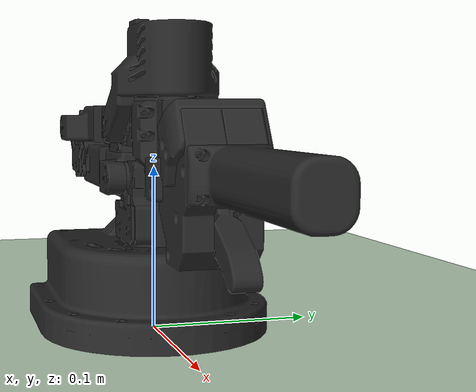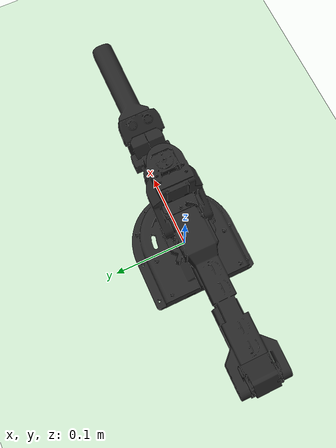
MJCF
<mujoco model="Alicia_D_v5_6_leader_arx">
  <compiler angle="radian" meshdir="../../meshes/Alicia_D_v5_6/arx/"/>

  <asset>
    <mesh name="base_link" content_type="model/stl" file="base_link.STL"/>
    <mesh name="link1" content_type="model/stl" file="link1.STL"/>
    <mesh name="link2" content_type="model/stl" file="link2.STL"/>
    <mesh name="link3" content_type="model/stl" file="link3.STL"/>
    <mesh name="link4" content_type="model/stl" file="link4.STL"/>
    <mesh name="link5" content_type="model/stl" file="link5.STL"/>
    <mesh name="link6" content_type="model/stl" file="link6.STL"/>
    <texture builtin="gradient" height="100" rgb1=".4 .5 .6" rgb2="0 0 0" type="skybox" width="100" />
    <texture builtin="checker" height="100" name="texplane" rgb1="1 1 1" rgb2=".8 .9 1" type="2d" width="100" />
    <material name="MatPlane" reflectance="0.5" texrepeat="1 1" texture="texplane" texuniform="true" />
    <material name="white" rgba="1 1 1 1" shininess="0.5" specular="0.1" />
    <material name="black" rgba="0.15 0.15 0.15 1" shininess="0.2" specular="0.05" />
    <material name="invisible" rgba="1 1 1 0" shininess="0" specular="0" />
  </asset>

  <worldbody>
    <geom conaffinity="1" condim="3" contype="1" friction="1 .1 .1" group="2" material="MatPlane" name="floor" pos="0 0 0" rgba="0.8 0.9 0.8 1" size="10 10 0.125" type="plane" />
    <light castshadow="false" cutoff="100" diffuse="1 1 1" dir="-0 0 -1.3" directional="true" exponent="1" pos="0 0 1.3" specular=".1 .1 .1" />
    <body name="base_link" pos="0 0 0" quat="0.707107 0.707107 0 0">
      <inertial pos="-0.00906098 0.00729625 -9.57459e-07" mass="0.686438" diaginertia="0.00097053 0.00109731 0.0017796" quat="-0.500684 -0.49896 0.501066 -0.499287"/>
      <geom type="mesh" contype="0" conaffinity="0" group="1" density="0" rgba="0.15 0.15 0.15 1" mesh="base_link"/>
      <geom type="mesh" rgba="0.15 0.15 0.15 1" mesh="base_link"/>
      <body name="link1" pos="0 0.0448 0" quat="0.707105 -0.707108 0 0">
        <inertial pos="-0.000165247 0.000294745 0.0256606" mass="0.04574" diaginertia="6.39393e-06 1.13049e-05 1.30941e-05" quat="0.710638 0.703466 -0.00803983 0.00801866"/>
        <joint name="joint1" pos="0 0 0" axis="0 0 1" range="-2.9656 2.9656" actuatorfrcrange="-5 5"/>
        <geom type="mesh" contype="0" conaffinity="0" group="1" density="0" rgba="0.15 0.15 0.15 1" mesh="link1"/>
        <geom type="mesh" rgba="0.15 0.15 0.15 1" mesh="link1"/>
        <body name="link2" pos="0 -0.0009 0.04841" quat="0.707105 0.707108 0 0">
          <inertial pos="-0.10442 0.00219031 4.87943e-05" mass="0.152608" diaginertia="2.91769e-05 0.000130474 0.000137631" quat="0.707821 -0.706386 -0.00268448 0.000782126"/>
          <joint name="joint2" pos="0 0 0" axis="0 0 -1" range="-3.14 0" actuatorfrcrange="-5 5"/>
          <geom type="mesh" contype="0" conaffinity="0" group="1" density="0" rgba="0.15 0.15 0.15 1" mesh="link2"/>
          <geom type="mesh" rgba="0.15 0.15 0.15 1" mesh="link2"/>
          <body name="link3" pos="-0.1893 0.027753 -0.0003">
            <inertial pos="0.0989767 0.00409281 -0.000185464" mass="0.112441" diaginertia="2.84645e-05 5.99384e-05 6.79258e-05" quat="-0.705773 0.706998 -0.0318533 0.0319901"/>
            <joint name="joint3" pos="0 0 0" axis="0 0 -1" range="-3.14 0" actuatorfrcrange="-5 5"/>
            <geom type="mesh" contype="0" conaffinity="0" group="1" density="0" rgba="0.15 0.15 0.15 1" mesh="link3"/>
            <geom type="mesh" rgba="0.15 0.15 0.15 1" mesh="link3"/>
            <body name="link4" pos="0.18791 0.00403 3e-05">
              <inertial pos="0.0390151 0.0294355 -0.000265101" mass="0.072879" diaginertia="3.11661e-05 4.4098e-05 5.96703e-05" quat="0.684165 -0.673788 0.198625 -0.196154"/>
              <joint name="joint4" pos="0 0 0" axis="0 0 1" range="-2.355 0.785" actuatorfrcrange="-5 5"/>
              <geom type="mesh" contype="0" conaffinity="0" group="1" density="0" rgba="0.15 0.15 0.15 1" mesh="link4"/>
              <geom type="mesh" rgba="0.15 0.15 0.15 1" mesh="link4"/>
              <body name="link5" pos="0.056471 0.021474 -0.00018156" quat="0.707105 0.707108 0 0">
                <inertial pos="0.00730651 9.68527e-05 0.0279112" mass="0.049767" diaginertia="1.26571e-05 1.39086e-05 1.78481e-05" quat="-0.0195163 0.999717 -0.0136257 -0.000576923"/>
                <joint name="joint5" pos="0 0 0" axis="0 0 1" range="-1.57 1.57" actuatorfrcrange="-5 5"/>
                <geom type="mesh" contype="0" conaffinity="0" group="1" density="0" rgba="0.15 0.15 0.15 1" mesh="link5"/>
                <geom type="mesh" rgba="0.15 0.15 0.15 1" mesh="link5"/>
                <body name="link6" pos="0.02695 0.00014 0.04691" quat="0.499998 -0.5 0.500002 -0.5">
                  <inertial pos="-0.000602432 0.00144197 0.0738657" mass="0.16331" diaginertia="4.17244e-05 0.000109051 0.000125045" quat="-2.84787e-05 -0.00408908 0.999983 -0.00409816"/>
                  <joint name="joint6" pos="0 0 0" axis="0 0 1" range="-2.9656 2.9656" actuatorfrcrange="-5 5"/>
                  <geom type="mesh" contype="0" conaffinity="0" group="1" density="0" rgba="0.15 0.15 0.15 1" mesh="link6"/>
                  <geom type="mesh" rgba="0.15 0.15 0.15 1" mesh="link6"/>
                  <body name="tool0" pos="0 0 0.05">
                    <inertial pos="0 0 0" quat="1 0 0 0" mass="0.001" diaginertia="1e-08 1e-08 1e-08" />
                    <geom type="sphere" size="0.01" contype="0" conaffinity="0" group="1" density="0" rgba="0 1 0 1" />
                    <site name="tool0_site" pos="0 0 0" size="0.01" type="sphere" />
                  </body>
                </body>
              </body>
            </body>
          </body>
        </body>
      </body>
    </body>
  </worldbody>
  <contact>
    <exclude body1="base_link" body2="link1" />
    <exclude body1="link1" body2="link2" />
    <exclude body1="link2" body2="link3" />
    <exclude body1="link3" body2="link4" />
    <exclude body1="link4" body2="link5" />
    <exclude body1="link5" body2="link6" />
  </contact>
</mujoco>
